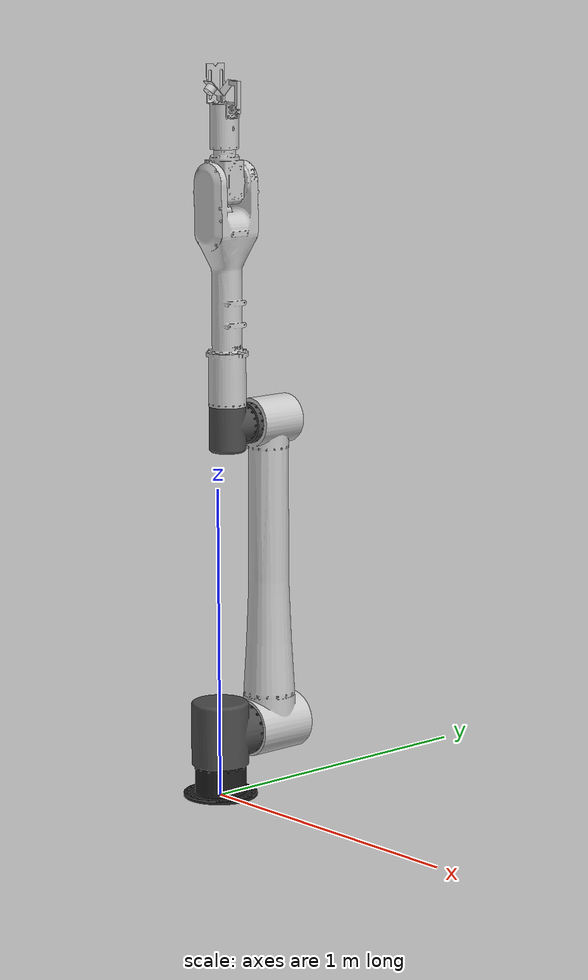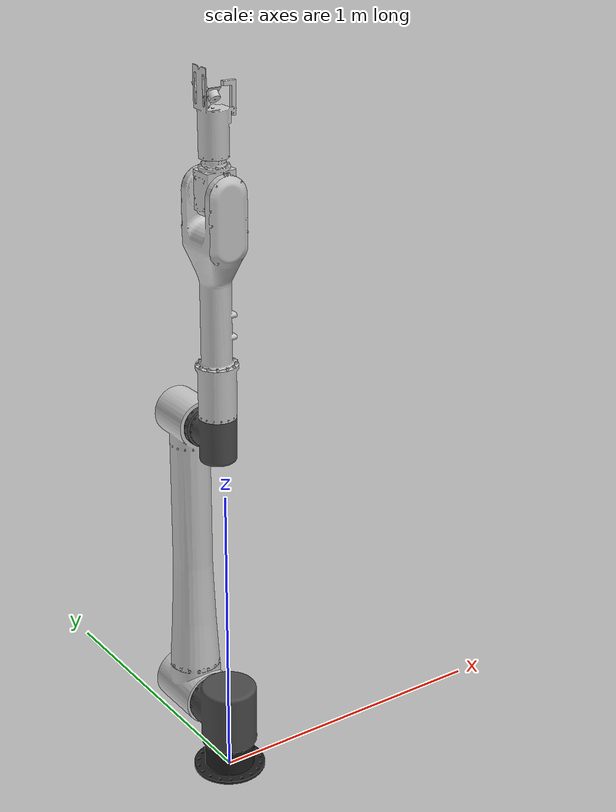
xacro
<?xml version="1.0"?>
<robot name="manipulator_description" xmlns:xacro="http://www.ros.org/wiki/xacro">

  <!-- Include materials -->
	<!--xacro:include filename="$(find manipulator_description)/urdf/materials.xacro" /-->

<!-- base link-->
    <link name="base_link">

<inertial>
            <origin xyz="-3.10150703372852E-09 7.69217301046195E-10 0.0392285802246154" rpy="0 0 0" />
            <mass value="1000" />
            <inertia ixx="100.0" ixy="0.0" ixz="0.0" iyy="100.0" iyz="0.0" izz="100.0" />
        </inertial>

        <visual>
            <origin xyz="0 0 0" rpy="0 0 0" />
            <geometry>
                <mesh filename="package://manipulator_description/meshes/base_link.STL" />
            </geometry>
            <material name="black" />
        </visual>
        <collision>
            <origin xyz="0 0 0" rpy="0 0 0" />
            <geometry>
                <mesh filename="package://manipulator_description/meshes/base_link.STL" />
            </geometry>
        </collision>
    </link>

    <link name="Link_1">

<inertial>
            <origin xyz="-3.48593329235086E-07 0.0109897641420375 -0.00482036436458533" rpy="0 0 0" />
            <mass value="1" />
            <inertia ixx="100.0" ixy="0.0" ixz="0.0" iyy="100.0" iyz="0.0" izz="100.0" />-->
        </inertial>

        <visual>
            <origin xyz="0 0 0" rpy="0 0 0" />
            <geometry>
                <mesh filename="package://manipulator_description/meshes/Link_1.STL" />
            </geometry>
            <material name="dark_grey" />
        </visual>
        <collision>
            <origin xyz="0 0 0" rpy="0 0 0" />
            <geometry>
                <mesh filename="package://manipulator_description/meshes/Link_1.STL" />
            </geometry>
        </collision>
    </link>
    <joint name="joint_1" type="continuous">
        <origin xyz="0 0 0.2" rpy="0 0 0" />
        <parent link="base_link" />
        <child link="Link_1" />
        <axis xyz="0 0 -1" />
        <limit lower="0" upper="0" effort="1000" velocity="1.5708" />
    </joint>
    <link name="Link_2">

<inertial>
            <origin xyz="4.64288584211257E-08 -0.450307572690538 0.207197326540885" rpy="0 0 0" />
            <mass value="1" />
            <inertia ixx="100.0" ixy="0.0" ixz="0.0" iyy="100.0" iyz="0.0" izz="100.0" />
        </inertial>

        <visual>
            <origin xyz="0 0 0" rpy="0 0 0" />
            <geometry>
                <mesh filename="package://manipulator_description/meshes/Link_2.STL" />
            </geometry>
            <material name="light_grey" />
        </visual>
        <collision>
            <origin xyz="0 0 0" rpy="0 0 0" />
            <geometry>
                <mesh filename="package://manipulator_description/meshes/Link_2.STL" />
            </geometry>
        </collision>
    </link>
    <joint name="joint_2" type="revolute">
        <origin xyz="0 0 0" rpy="-1.5708 0 0" />
        <parent link="Link_1" />
        <child link="Link_2" />
        <axis xyz="0 0 -1" />
        <limit lower="-0.6236" upper="1.96" effort="1000" velocity="1.5708" />
    </joint>
    <link name="Link_3">

<inertial>
            <origin xyz="-0.000152239281300259 -6.44384849479815E-08 -0.151975016298213" rpy="0 0 0" />
            <mass value="1" />
            <inertia ixx="40.0" ixy="0.0" ixz="0.0" iyy="40.0" iyz="0.0" izz="40.0" />
        </inertial>

        <visual>
            <origin xyz="0 0 0" rpy="0 0 0" />
            <geometry>
                <mesh filename="package://manipulator_description/meshes/Link_3.STL" />
            </geometry>
            <material name="dark_grey" />
        </visual>
        <collision>
            <origin xyz="0 0 0" rpy="0 0 0" />
            <geometry>
                <mesh filename="package://manipulator_description/meshes/Link_3.STL" />
            </geometry>
        </collision>
    </link>
    <joint name="joint_3" type="revolute">
        <origin xyz="0 -1 0.208" rpy="0 0 1.5708" />
        <parent link="Link_2" />
        <child link="Link_3" />
        <axis xyz="0 0 1" />
        <limit lower="-2.9" upper="2.9" effort="848" velocity="1.9477" />
    </joint>
    <link name="Link_4">

<inertial>
            <origin xyz="-0.00185023742496417 -0.00085145709068035 0.427869656938719" rpy="0 0 0" />
            <mass value="1" />
            <inertia ixx="40.0" ixy="0.0" ixz="0.0" iyy="40.0" iyz="0.0" izz="40.0" />
        </inertial>

        <visual>
            <origin xyz="0 0 0" rpy="0 0 0" />
            <geometry>
                <mesh filename="package://manipulator_description/meshes/Link_4.STL" />
            </geometry>
            <material name="light_grey" />
        </visual>
        <collision>
            <origin xyz="0 0 0" rpy="0 0 0" />
            <geometry>
                <mesh filename="package://manipulator_description/meshes/Link_4.STL" />
            </geometry>
        </collision>
    </link>
    <joint name="joint_4" type="revolute">
        <origin xyz="-0.001 0 -0.169" rpy="0.23843 1.5708 -2.9032" />
        <parent link="Link_3" />
        <child link="Link_4" />
        <axis xyz="0 0 -1" />
        <limit lower="-0.6" upper="0.6" effort="284" velocity="2.6179" />
    </joint>
    <link name="Link_5">

<inertial>
            <origin xyz="-0.00548935425108261 -2.0681120402842E-05 -0.018180509143497" rpy="0 0 0" />
            <mass value="0.1" />
            <inertia ixx="10.0" ixy="0.0" ixz="0.0" iyy="10.0" iyz="0.0" izz="10.0" />
        </inertial>

        <visual>
            <origin xyz="0 0 0" rpy="0 0 0" />
            <geometry>
                <mesh filename="package://manipulator_description/meshes/Link_5.STL" />
            </geometry>
            <material name="light_grey" />
        </visual>
        <collision>
            <origin xyz="0 0 0" rpy="0 0 0" />
            <geometry>
                <mesh filename="package://manipulator_description/meshes/Link_5.STL" />
            </geometry>
        </collision>
    </link>
    <joint name="joint_5" type="revolute">
        <origin xyz="0 0 0.77" rpy="3.1326 0 -3.1299" />
        <parent link="Link_4" />
        <child link="Link_5" />
        <axis xyz="1 0 0" />
        <limit lower="-2" upper="2" effort="80" velocity="3.665" />
    </joint>
    <link name="Link_6">

<inertial>
            <origin xyz="-0.00240134732899384 -0.000145858477892405 -0.169290413904326" rpy="0 0 0" />
            <mass value="0.459681563463666" />
            <inertia ixx="1.0" ixy="0.0" ixz="0.0" iyy="1.0" iyz="0.0" izz="1.0" />
        </inertial>

        <visual>
            <origin xyz="0 0 0" rpy="0 0 0" />
            <geometry>
                <mesh filename="package://manipulator_description/meshes/Link_6.STL" />
            </geometry>
            <material name="light_grey" />
        </visual>
        <collision>
            <origin xyz="0 0 0" rpy="0 0 0" />
            <geometry>
                <mesh filename="package://manipulator_description/meshes/Link_6.STL" />
            </geometry>
        </collision>
    </link>
    <joint name="joint_6" type="revolute">
        <origin xyz="-0.0045 -1.7975E-05 -0.3655" rpy="3.1416 0 1.6078" />
        <parent link="Link_5" />
        <child link="Link_6" />
        <axis xyz="0 0 1" />
        <limit lower="-3.1415" upper="3.1415" effort="86" velocity="3.665" />
    </joint>
    <link name="push_Link">

<inertial>
            <origin xyz="0.0204799322370691 -0.000588633057326891 0.129588528024653" rpy="0 0 0" />
            <mass value="0.0363787354805148" />
            <inertia ixx="1.0" ixy="0.0" ixz="0.0" iyy="1.0" iyz="0.0" izz="1.0" />
        </inertial>

        <visual>
            <origin xyz="0 0 0" rpy="0 0 0" />
            <geometry>
                <mesh filename="package://manipulator_description/meshes/push_Link.STL" />
            </geometry>
            <material name="light_grey" />
        </visual>
        <collision>
            <origin xyz="0 0 0" rpy="0 0 0" />
            <geometry>
                <mesh filename="package://manipulator_description/meshes/push_Link.STL" />
            </geometry>
        </collision>
    </link>
    <joint name="push_joint" type="prismatic">
        <origin xyz="-0.019208 0 -0.22247" rpy="0 0 -1.5454" />
        <parent link="Link_6" />
        <child link="push_Link" />
        <axis xyz="0 0 -1" />
        <limit lower="-0.1" upper="0.0" effort="100" velocity="1" />
        <dynamics damping="50" friction="1" />
        <safety_controller soft_upper="0" soft_lower="-0.15" k_position="20" k_velocity="20" />
    </joint>
    <!-- Transmissions for ROS-Control -->

    <transmission name="trans_joint_1">
        <type>transmission_interface/SimpleTransmission</type>
        <joint name="joint_1">
            <hardwareInterface>hardware_interface/VelocityJointInterface</hardwareInterface>
        </joint>
        <actuator name="joint_1_motor">
            <hardwareInterface>hardware_interface/VelocityJointInterface</hardwareInterface>
            <mechanicalReduction>1</mechanicalReduction>
        </actuator>
    </transmission>
    <transmission name="trans_joint_2">
        <type>transmission_interface/SimpleTransmission</type>
        <joint name="joint_2">
            <hardwareInterface>hardware_interface/VelocityJointInterface</hardwareInterface>
        </joint>
        <actuator name="joint_2_motor">
            <hardwareInterface>hardware_interface/VelocityJointInterface</hardwareInterface>
            <mechanicalReduction>1</mechanicalReduction>
        </actuator>
    </transmission>
    <transmission name="trans_joint_3">
        <type>transmission_interface/SimpleTransmission</type>
        <joint name="joint_3">
            <hardwareInterface>hardware_interface/VelocityJointInterface</hardwareInterface>
        </joint>
        <actuator name="joint_3_motor">
            <hardwareInterface>hardware_interface/VelocityJointInterface</hardwareInterface>
            <mechanicalReduction>1</mechanicalReduction>
        </actuator>
    </transmission>
    <transmission name="trans_joint_4">
        <type>transmission_interface/SimpleTransmission</type>
        <joint name="joint_4">
            <hardwareInterface>hardware_interface/VelocityJointInterface</hardwareInterface>
        </joint>
        <actuator name="joint_4_motor">
            <hardwareInterface>hardware_interface/VelocityJointInterface</hardwareInterface>
            <mechanicalReduction>1</mechanicalReduction>
        </actuator>
    </transmission>
    <transmission name="trans_joint_5">
        <type>transmission_interface/SimpleTransmission</type>
        <joint name="joint_5">
            <hardwareInterface>hardware_interface/VelocityJointInterface</hardwareInterface>
        </joint>
        <actuator name="joint_5_motor">
            <hardwareInterface>hardware_interface/VelocityJointInterface</hardwareInterface>
            <mechanicalReduction>1</mechanicalReduction>
        </actuator>
    </transmission>
    <transmission name="trans_joint_6">
        <type>transmission_interface/SimpleTransmission</type>
        <joint name="joint_6">
            <hardwareInterface>hardware_interface/VelocityJointInterface</hardwareInterface>
        </joint>
        <actuator name="joint_6_motor">
            <hardwareInterface>hardware_interface/VelocityJointInterface</hardwareInterface>
            <mechanicalReduction>1</mechanicalReduction>
        </actuator>
    </transmission>
    <transmission name="trans_push_joint">
        <type>transmission_interface/SimpleTransmission</type>
        <joint name="push_joint">
            <hardwareInterface>hardware_interface/VelocityJointInterface</hardwareInterface>
        </joint>
        <actuator name="push_joint_motor">
            <hardwareInterface>hardware_interface/VelocityJointInterface</hardwareInterface>
            <mechanicalReduction>1</mechanicalReduction>
        </actuator>
    </transmission>

 <!-- ros_control plugin -->
    <gazebo>
        <plugin name="gazebo_ros_control" filename="libgazebo_ros_control.so">
            <robotNamespace>/manipulator_description</robotNamespace>
            <robotSimType>gazebo_ros_control/DefaultRobotHWSim</robotSimType>
            <legacyModeNS>true</legacyModeNS>
        </plugin>
    </gazebo>

  <!-- Gazebo Link properties
  https://github.com/osrf/gazebo/blob/master/media/materials/scripts/gazebo.material
      -->
  <gazebo reference="base_link">
    <material>Gazebo/Black</material>
  </gazebo>

  <gazebo reference="Link_1">
    <material>Gazebo/DarkGrey</material>
  </gazebo>

  <gazebo reference="Link_2">
    <material>Gazebo/Grey</material>
  </gazebo>

  <gazebo reference="Link_3">
    <material>Gazebo/DarkGrey</material>
  </gazebo>

  <gazebo reference="Link_4">
    <material>Gazebo/Grey</material>
  </gazebo>

  <gazebo reference="Link_5">
    <material>Gazebo/Grey</material>
  </gazebo>

  <gazebo reference="Link_6">
    <material>Gazebo/Grey</material>
  </gazebo>

  <gazebo reference="push_Link">
    <material>Gazebo/Grey</material>
  </gazebo>
</robot>
